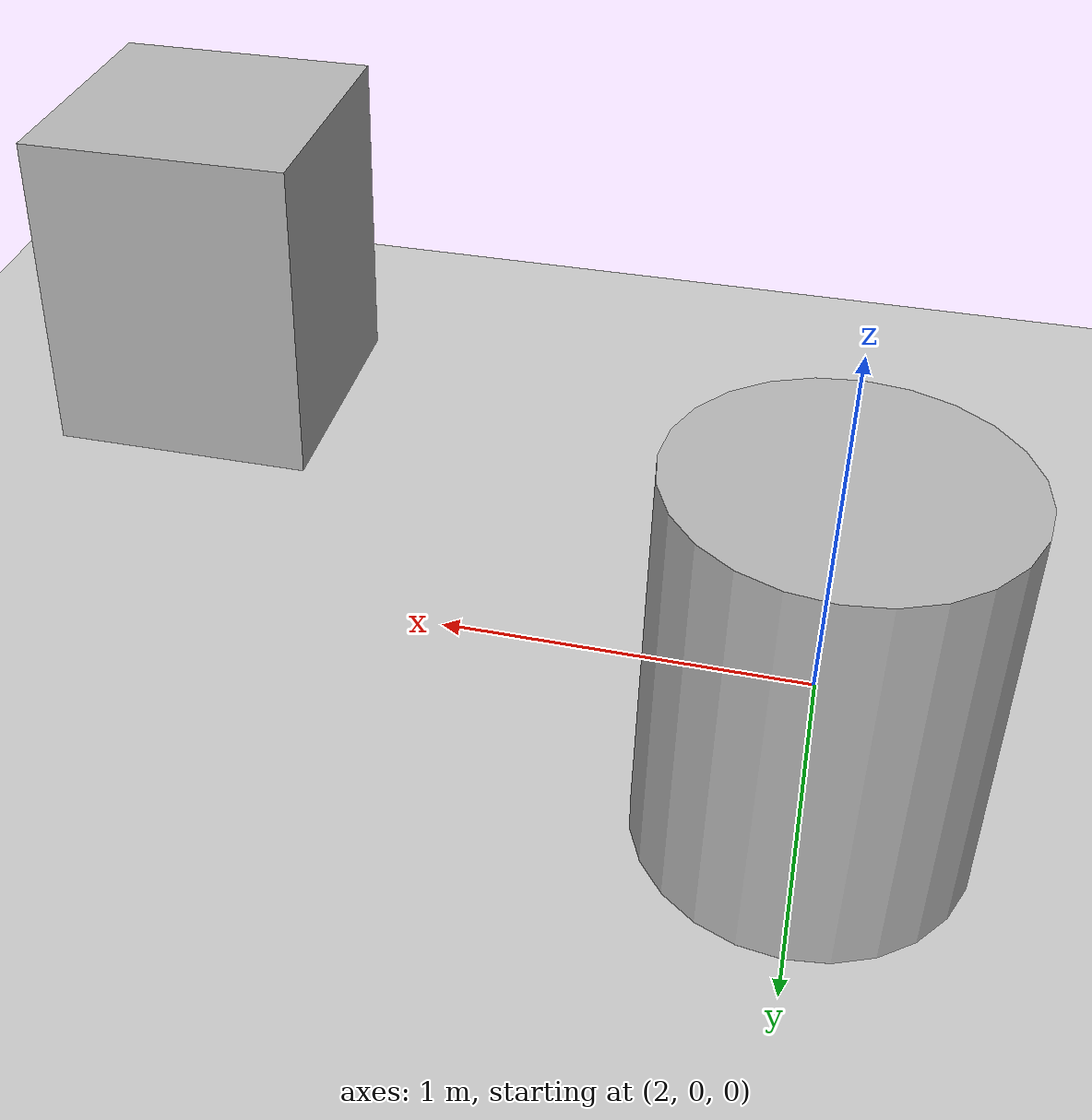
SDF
<?xml version="1.0" ?>
<sdf version="1.6">
  <world name="obstacle_course">
    <include>
      <uri>model://sun</uri>
    </include>
    <include>
      <uri>model://ground_plane</uri>
    </include>

    <!-- Cylindrical Obstacle 1 -->
    <model name="obstacle_cylinder_1">
      <pose>2.0 0.5 0.5 0 0 0</pose>
      <link name="link">
        <collision name="collision">
          <geometry>
            <cylinder>
              <radius>0.4</radius>
              <length>1.0</length>
            </cylinder>
          </geometry>
        </collision>
        <visual name="visual">
          <geometry>
            <cylinder>
              <radius>0.4</radius>
              <length>1.0</length>
            </cylinder>
          </geometry>
        </visual>
      </link>
    </model>

    <!-- Box Obstacle 2 -->
    <model name="obstacle_box_2">
      <pose>4.0 -1.0 0.5 0 0 0</pose>
      <link name="link">
        <collision name="collision">
          <geometry>
            <box>
              <size>0.8 0.8 1.0</size>
            </box>
          </geometry>
        </collision>
        <visual name="visual">
          <geometry>
            <box>
              <size>0.8 0.8 1.0</size>
            </box>
          </geometry>
        </visual>
      </link>
    </model>
  </world>
</sdf>
